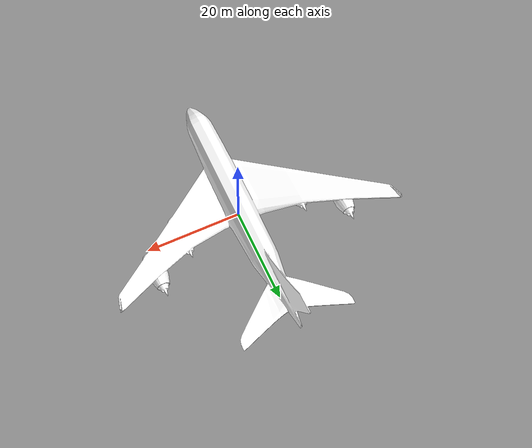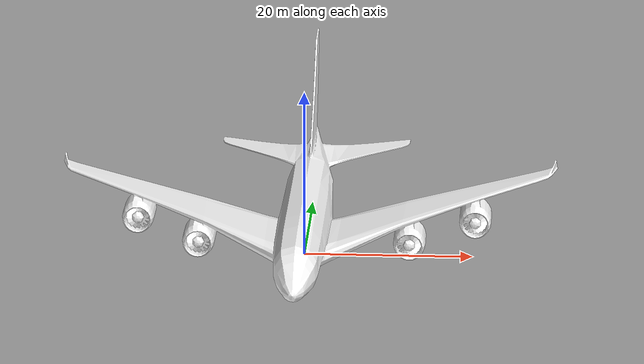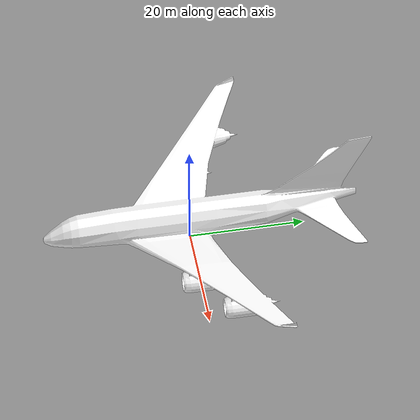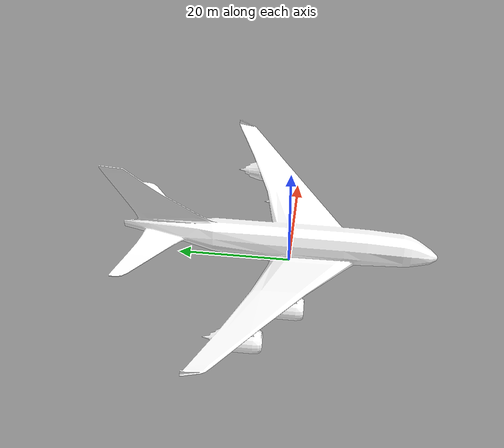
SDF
<?xml version="1.0" ?>
<sdf version='1.6'>
  <model name="Airplane">

    <static>true</static>

    <link name="link">

      <visual name="visual">
        <geometry>
          <mesh>
            <uri>model://Airplane/meshes/airplane.dae</uri>
          </mesh>
        </geometry>
        <material>
          <diffuse>1.0 1.0 1.0</diffuse>
          <specular>0.7 0.7 0.7</specular>
          <pbr>
            <metal>
              <albedo_map>model://Airplane/meshes/textures/diffuse.jpg</albedo_map>
              <normal_map>model://Airplane/meshes/textures/metal.jpg</normal_map>
              <metalness_map>model://Airplane/meshes/textures/normal.jpg</metalness_map>
              <roughness_map>model://Airplane/meshes/textures/rough.jpg</roughness_map>
              <environment_map>model://Airplane/meshes/textures/rural_asphalt_road_1k.dds</environment_map>
            </metal>
          </pbr>
        </material>
      </visual>

      <collision name="collision">
        <geometry>
          <mesh>
            <uri>model://Airplane/meshes/Airplane.STL</uri>
            <scale>1 1 1</scale>
          </mesh>
        </geometry>
        <max_contacts>10</max_contacts>
        <surface>
          <bounce/>
          <friction>
            <ode/>
          </friction>
          <contact>
            <ode/>
          </contact>
        </surface>
      </collision>

    </link>

  </model>
</sdf>
